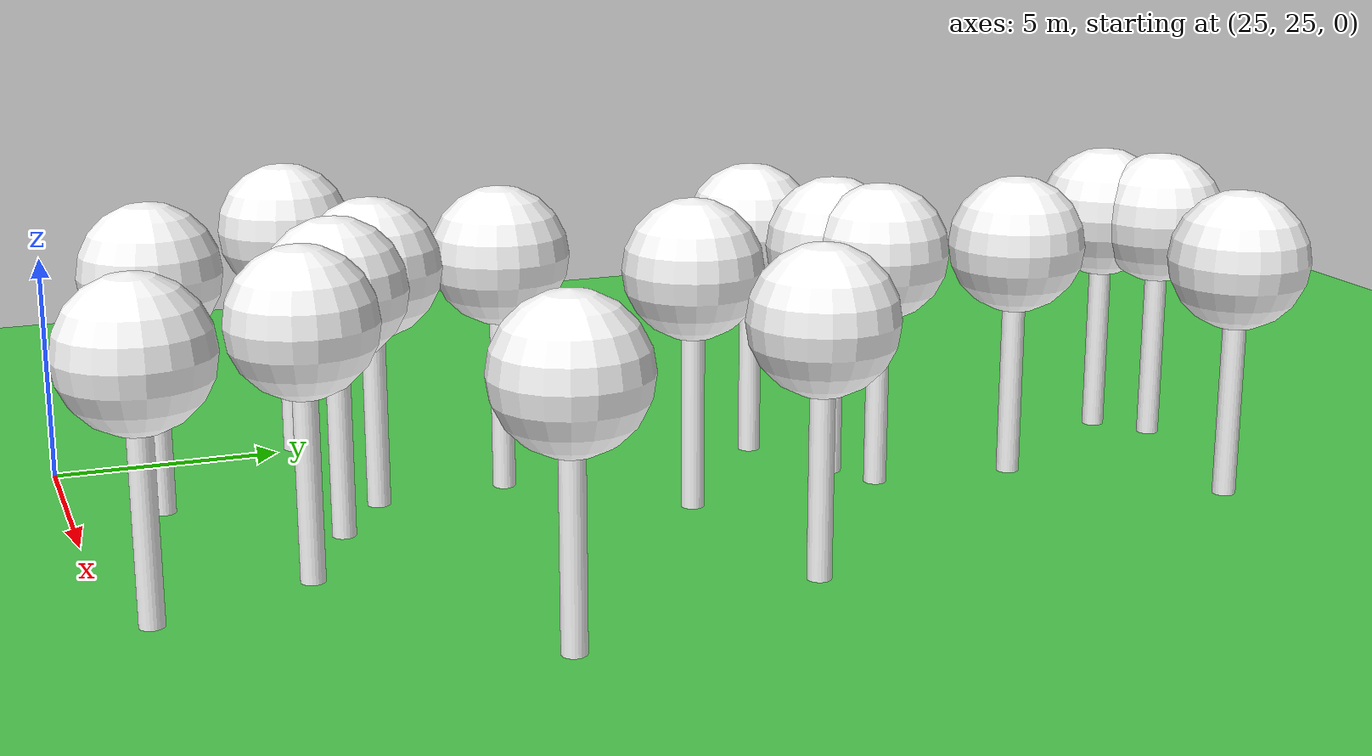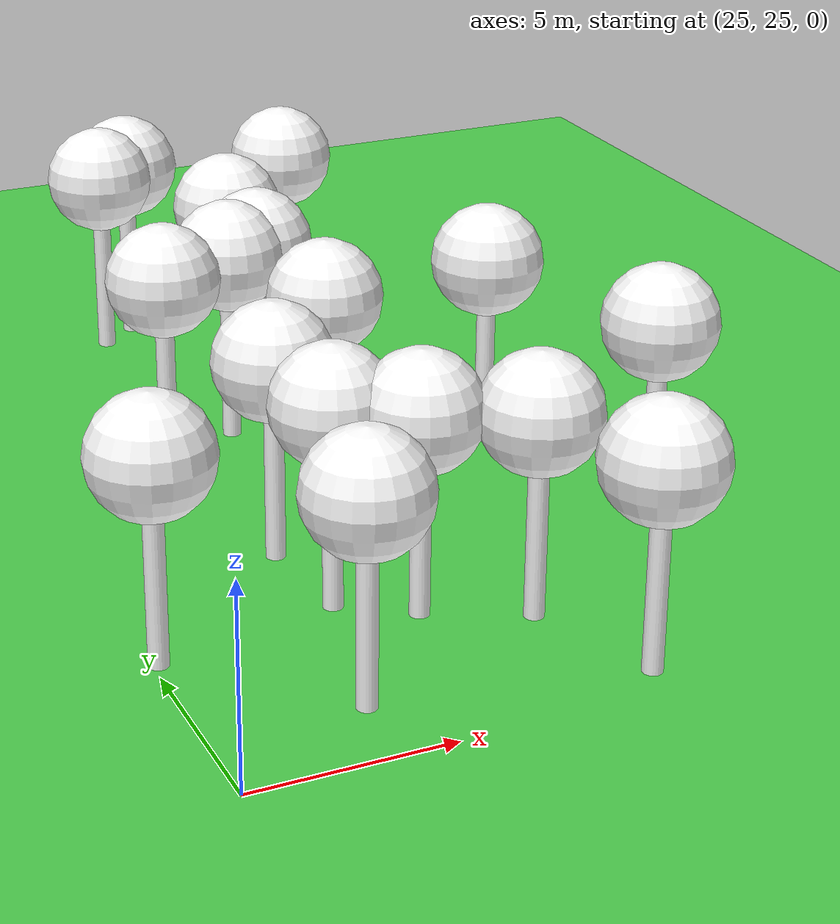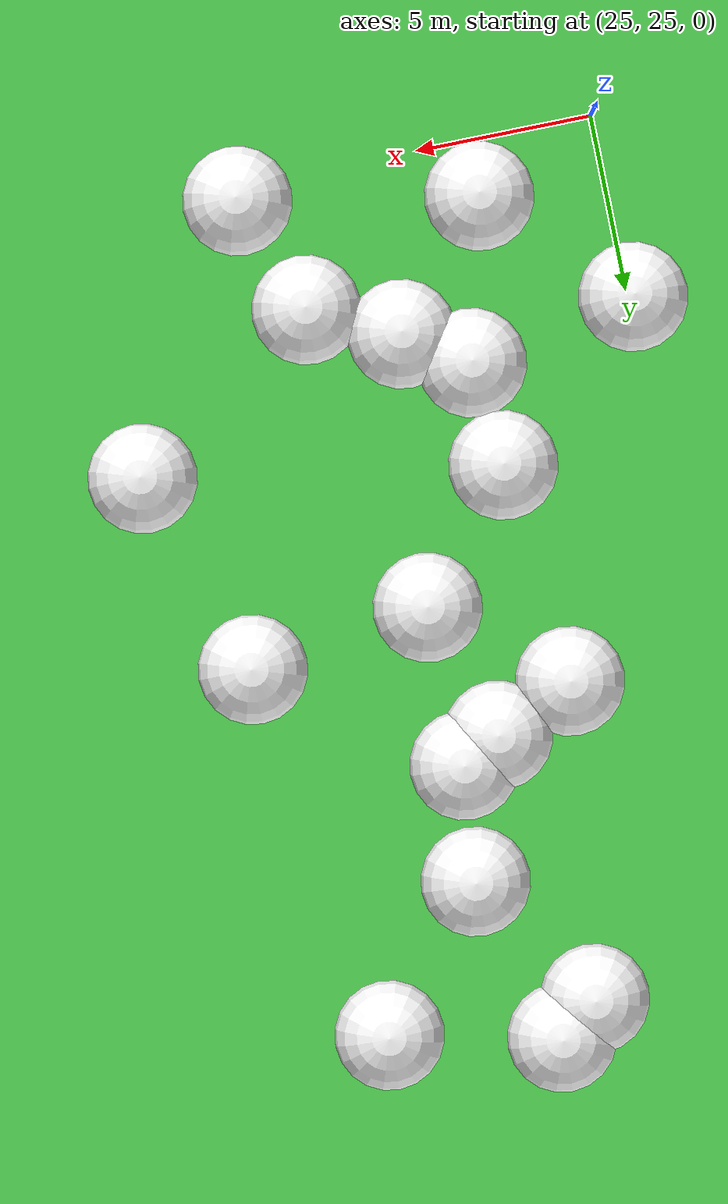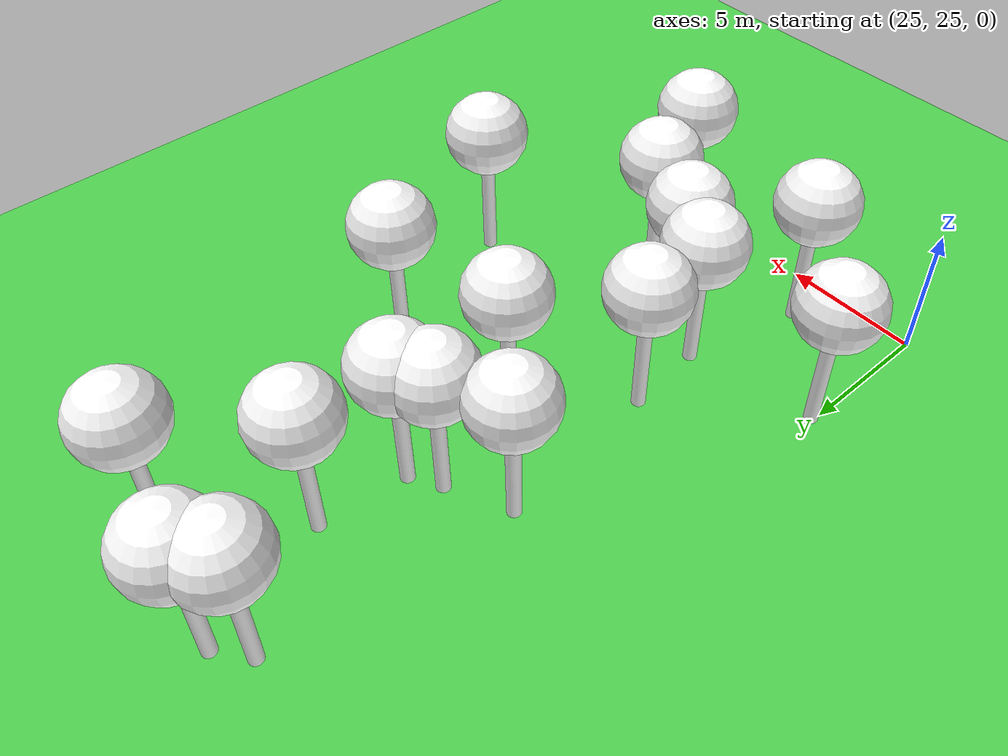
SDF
<sdf version="1.8">
 <world name="forest_world">
  <model name="tree_simple475">
   <static>1</static>
   <link name="link">
    <pose>0 0 0.1 0 -0 0</pose>
    <collision name="collision_trunk">
     <pose>0 0 2 0 -0 0</pose>
     <geometry><cylinder><radius>0.25</radius><length>4</length></cylinder></geometry>
    </collision>
    <collision name="collision_treetop">
     <pose>0 0 5.2 0 -0 0</pose>
     <geometry><sphere><radius>1.5</radius></sphere></geometry>
    </collision>
    <visual name="trunk_475">
     <pose>0 0 2 0 -0 0</pose>
     <geometry><cylinder><radius>0.25</radius><length>4</length></cylinder></geometry>
     <material>
      <ambient>0.5 0.5 0.5 1</ambient>
      <diffuse>1.0 1.0 1.0 1</diffuse>
      <specular>0.0 0.0 0.0 1</specular>
      <pbr>
       <metal>
        <albedo_map>file://textures/tree_simple_trunk.jpg</albedo_map>
        <metalness>0.0</metalness>
        <roughness>0.8</roughness>
       </metal>
      </pbr>
     </material>
    </visual>
    <visual name="treetop_475">
     <pose>0 0 5.2 0 -0 0</pose>
     <geometry><sphere><radius>1.5</radius></sphere></geometry>
     <material>
      <ambient>0.5 0.5 0.5 1</ambient>
      <diffuse>1.0 1.0 1.0 1</diffuse>
      <specular>0.0 0.0 0.0 1</specular>
      <pbr>
       <metal>
        <albedo_map>file://textures/tree_simple_treetop.jpg</albedo_map>
        <metalness>0.0</metalness>
        <roughness>0.9</roughness>
       </metal>
      </pbr>
     </material>
    </visual>
   </link>
   <pose>30.9431222124 49.7431013716 0 0 -0 0</pose>
  </model>
  <model name="tree_simple449">
   <static>1</static>
   <link name="link">
    <pose>0 0 0.1 0 -0 0</pose>
    <collision name="collision_trunk">
     <pose>0 0 2 0 -0 0</pose>
     <geometry><cylinder><radius>0.25</radius><length>4</length></cylinder></geometry>
    </collision>
    <collision name="collision_treetop">
     <pose>0 0 5.2 0 -0 0</pose>
     <geometry><sphere><radius>1.5</radius></sphere></geometry>
    </collision>
    <visual name="trunk_449">
     <pose>0 0 2 0 -0 0</pose>
     <geometry><cylinder><radius>0.25</radius><length>4</length></cylinder></geometry>
     <material>
      <ambient>0.5 0.5 0.5 1</ambient>
      <diffuse>1.0 1.0 1.0 1</diffuse>
      <specular>0.0 0.0 0.0 1</specular>
      <pbr>
       <metal>
        <albedo_map>file://textures/tree_simple_trunk.jpg</albedo_map>
        <metalness>0.0</metalness>
        <roughness>0.8</roughness>
       </metal>
      </pbr>
     </material>
    </visual>
    <visual name="treetop_449">
     <pose>0 0 5.2 0 -0 0</pose>
     <geometry><sphere><radius>1.5</radius></sphere></geometry>
     <material>
      <ambient>0.5 0.5 0.5 1</ambient>
      <diffuse>1.0 1.0 1.0 1</diffuse>
      <specular>0.0 0.0 0.0 1</specular>
      <pbr>
       <metal>
        <albedo_map>file://textures/tree_simple_treetop.jpg</albedo_map>
        <metalness>0.0</metalness>
        <roughness>0.9</roughness>
       </metal>
      </pbr>
     </material>
    </visual>
   </link>
   <pose>32.2301413543 37.584175072 0 0 -0 0</pose>
  </model>
  <model name="tree_simple366">
   <static>1</static>
   <link name="link">
    <pose>0 0 0.1 0 -0 0</pose>
    <collision name="collision_trunk">
     <pose>0 0 2 0 -0 0</pose>
     <geometry><cylinder><radius>0.25</radius><length>4</length></cylinder></geometry>
    </collision>
    <collision name="collision_treetop">
     <pose>0 0 5.2 0 -0 0</pose>
     <geometry><sphere><radius>1.5</radius></sphere></geometry>
    </collision>
    <visual name="trunk_366">
     <pose>0 0 2 0 -0 0</pose>
     <geometry><cylinder><radius>0.25</radius><length>4</length></cylinder></geometry>
     <material>
      <ambient>0.5 0.5 0.5 1</ambient>
      <diffuse>1.0 1.0 1.0 1</diffuse>
      <specular>0.0 0.0 0.0 1</specular>
      <pbr>
       <metal>
        <albedo_map>file://textures/tree_simple_trunk.jpg</albedo_map>
        <metalness>0.0</metalness>
        <roughness>0.8</roughness>
       </metal>
      </pbr>
     </material>
    </visual>
    <visual name="treetop_366">
     <pose>0 0 5.2 0 -0 0</pose>
     <geometry><sphere><radius>1.5</radius></sphere></geometry>
     <material>
      <ambient>0.5 0.5 0.5 1</ambient>
      <diffuse>1.0 1.0 1.0 1</diffuse>
      <specular>0.0 0.0 0.0 1</specular>
      <pbr>
       <metal>
        <albedo_map>file://textures/tree_simple_treetop.jpg</albedo_map>
        <metalness>0.0</metalness>
        <roughness>0.9</roughness>
       </metal>
      </pbr>
     </material>
    </visual>
   </link>
   <pose>37.2116014065 38.3075288524 0 0 -0 0</pose>
  </model>
  <model name="tree_simple345">
   <static>1</static>
   <link name="link">
    <pose>0 0 0.1 0 -0 0</pose>
    <collision name="collision_trunk">
     <pose>0 0 2 0 -0 0</pose>
     <geometry><cylinder><radius>0.25</radius><length>4</length></cylinder></geometry>
    </collision>
    <collision name="collision_treetop">
     <pose>0 0 5.2 0 -0 0</pose>
     <geometry><sphere><radius>1.5</radius></sphere></geometry>
    </collision>
    <visual name="trunk_345">
     <pose>0 0 2 0 -0 0</pose>
     <geometry><cylinder><radius>0.25</radius><length>4</length></cylinder></geometry>
     <material>
      <ambient>0.5 0.5 0.5 1</ambient>
      <diffuse>1.0 1.0 1.0 1</diffuse>
      <specular>0.0 0.0 0.0 1</specular>
      <pbr>
       <metal>
        <albedo_map>file://textures/tree_simple_trunk.jpg</albedo_map>
        <metalness>0.0</metalness>
        <roughness>0.8</roughness>
       </metal>
      </pbr>
     </material>
    </visual>
    <visual name="treetop_345">
     <pose>0 0 5.2 0 -0 0</pose>
     <geometry><sphere><radius>1.5</radius></sphere></geometry>
     <material>
      <ambient>0.5 0.5 0.5 1</ambient>
      <diffuse>1.0 1.0 1.0 1</diffuse>
      <specular>0.0 0.0 0.0 1</specular>
      <pbr>
       <metal>
        <albedo_map>file://textures/tree_simple_treetop.jpg</albedo_map>
        <metalness>0.0</metalness>
        <roughness>0.9</roughness>
       </metal>
      </pbr>
     </material>
    </visual>
   </link>
   <pose>28.6628994432 26.9095330542 0 0 -0 0</pose>
  </model>
  <model name="tree_simple332">
   <static>1</static>
   <link name="link">
    <pose>0 0 0.1 0 -0 0</pose>
    <collision name="collision_trunk">
     <pose>0 0 2 0 -0 0</pose>
     <geometry><cylinder><radius>0.25</radius><length>4</length></cylinder></geometry>
    </collision>
    <collision name="collision_treetop">
     <pose>0 0 5.2 0 -0 0</pose>
     <geometry><sphere><radius>1.5</radius></sphere></geometry>
    </collision>
    <visual name="trunk_332">
     <pose>0 0 2 0 -0 0</pose>
     <geometry><cylinder><radius>0.25</radius><length>4</length></cylinder></geometry>
     <material>
      <ambient>0.5 0.5 0.5 1</ambient>
      <diffuse>1.0 1.0 1.0 1</diffuse>
      <specular>0.0 0.0 0.0 1</specular>
      <pbr>
       <metal>
        <albedo_map>file://textures/tree_simple_trunk.jpg</albedo_map>
        <metalness>0.0</metalness>
        <roughness>0.8</roughness>
       </metal>
      </pbr>
     </material>
    </visual>
    <visual name="treetop_332">
     <pose>0 0 5.2 0 -0 0</pose>
     <geometry><sphere><radius>1.5</radius></sphere></geometry>
     <material>
      <ambient>0.5 0.5 0.5 1</ambient>
      <diffuse>1.0 1.0 1.0 1</diffuse>
      <specular>0.0 0.0 0.0 1</specular>
      <pbr>
       <metal>
        <albedo_map>file://textures/tree_simple_treetop.jpg</albedo_map>
        <metalness>0.0</metalness>
        <roughness>0.9</roughness>
       </metal>
      </pbr>
     </material>
    </visual>
   </link>
   <pose>39.1289157524 32.636662066 0 0 -0 0</pose>
  </model>
  <model name="tree_simple313">
   <static>1</static>
   <link name="link">
    <pose>0 0 0.1 0 -0 0</pose>
    <collision name="collision_trunk">
     <pose>0 0 2 0 -0 0</pose>
     <geometry><cylinder><radius>0.25</radius><length>4</length></cylinder></geometry>
    </collision>
    <collision name="collision_treetop">
     <pose>0 0 5.2 0 -0 0</pose>
     <geometry><sphere><radius>1.5</radius></sphere></geometry>
    </collision>
    <visual name="trunk_313">
     <pose>0 0 2 0 -0 0</pose>
     <geometry><cylinder><radius>0.25</radius><length>4</length></cylinder></geometry>
     <material>
      <ambient>0.5 0.5 0.5 1</ambient>
      <diffuse>1.0 1.0 1.0 1</diffuse>
      <specular>0.0 0.0 0.0 1</specular>
      <pbr>
       <metal>
        <albedo_map>file://textures/tree_simple_trunk.jpg</albedo_map>
        <metalness>0.0</metalness>
        <roughness>0.8</roughness>
       </metal>
      </pbr>
     </material>
    </visual>
    <visual name="treetop_313">
     <pose>0 0 5.2 0 -0 0</pose>
     <geometry><sphere><radius>1.5</radius></sphere></geometry>
     <material>
      <ambient>0.5 0.5 0.5 1</ambient>
      <diffuse>1.0 1.0 1.0 1</diffuse>
      <specular>0.0 0.0 0.0 1</specular>
      <pbr>
       <metal>
        <albedo_map>file://textures/tree_simple_treetop.jpg</albedo_map>
        <metalness>0.0</metalness>
        <roughness>0.9</roughness>
       </metal>
      </pbr>
     </material>
    </visual>
   </link>
   <pose>25.1046881591 30.4098930382 0 0 -0 0</pose>
  </model>
  <model name="tree_simple294">
   <static>1</static>
   <link name="link">
    <pose>0 0 0.1 0 -0 0</pose>
    <collision name="collision_trunk">
     <pose>0 0 2 0 -0 0</pose>
     <geometry><cylinder><radius>0.25</radius><length>4</length></cylinder></geometry>
    </collision>
    <collision name="collision_treetop">
     <pose>0 0 5.2 0 -0 0</pose>
     <geometry><sphere><radius>1.5</radius></sphere></geometry>
    </collision>
    <visual name="trunk_294">
     <pose>0 0 2 0 -0 0</pose>
     <geometry><cylinder><radius>0.25</radius><length>4</length></cylinder></geometry>
     <material>
      <ambient>0.5 0.5 0.5 1</ambient>
      <diffuse>1.0 1.0 1.0 1</diffuse>
      <specular>0.0 0.0 0.0 1</specular>
      <pbr>
       <metal>
        <albedo_map>file://textures/tree_simple_trunk.jpg</albedo_map>
        <metalness>0.0</metalness>
        <roughness>0.8</roughness>
       </metal>
      </pbr>
     </material>
    </visual>
    <visual name="treetop_294">
     <pose>0 0 5.2 0 -0 0</pose>
     <geometry><sphere><radius>1.5</radius></sphere></geometry>
     <material>
      <ambient>0.5 0.5 0.5 1</ambient>
      <diffuse>1.0 1.0 1.0 1</diffuse>
      <specular>0.0 0.0 0.0 1</specular>
      <pbr>
       <metal>
        <albedo_map>file://textures/tree_simple_treetop.jpg</albedo_map>
        <metalness>0.0</metalness>
        <roughness>0.9</roughness>
       </metal>
      </pbr>
     </material>
    </visual>
   </link>
   <pose>29.4568486027 34.1994676111 0 0 -0 0</pose>
  </model>
  <model name="tree_simple190">
   <static>1</static>
   <link name="link">
    <pose>0 0 0.1 0 -0 0</pose>
    <collision name="collision_trunk">
     <pose>0 0 2 0 -0 0</pose>
     <geometry><cylinder><radius>0.25</radius><length>4</length></cylinder></geometry>
    </collision>
    <collision name="collision_treetop">
     <pose>0 0 5.2 0 -0 0</pose>
     <geometry><sphere><radius>1.5</radius></sphere></geometry>
    </collision>
    <visual name="trunk_190">
     <pose>0 0 2 0 -0 0</pose>
     <geometry><cylinder><radius>0.25</radius><length>4</length></cylinder></geometry>
     <material>
      <ambient>0.5 0.5 0.5 1</ambient>
      <diffuse>1.0 1.0 1.0 1</diffuse>
      <specular>0.0 0.0 0.0 1</specular>
      <pbr>
       <metal>
        <albedo_map>file://textures/tree_simple_trunk.jpg</albedo_map>
        <metalness>0.0</metalness>
        <roughness>0.8</roughness>
       </metal>
      </pbr>
     </material>
    </visual>
    <visual name="treetop_190">
     <pose>0 0 5.2 0 -0 0</pose>
     <geometry><sphere><radius>1.5</radius></sphere></geometry>
     <material>
      <ambient>0.5 0.5 0.5 1</ambient>
      <diffuse>1.0 1.0 1.0 1</diffuse>
      <specular>0.0 0.0 0.0 1</specular>
      <pbr>
       <metal>
        <albedo_map>file://textures/tree_simple_treetop.jpg</albedo_map>
        <metalness>0.0</metalness>
        <roughness>0.9</roughness>
       </metal>
      </pbr>
     </material>
    </visual>
   </link>
   <pose>33.8682165362 29.0192768916 0 0 -0 0</pose>
  </model>
  <model name="tree_simple180">
   <static>1</static>
   <link name="link">
    <pose>0 0 0.1 0 -0 0</pose>
    <collision name="collision_trunk">
     <pose>0 0 2 0 -0 0</pose>
     <geometry><cylinder><radius>0.25</radius><length>4</length></cylinder></geometry>
    </collision>
    <collision name="collision_treetop">
     <pose>0 0 5.2 0 -0 0</pose>
     <geometry><sphere><radius>1.5</radius></sphere></geometry>
    </collision>
    <visual name="trunk_180">
     <pose>0 0 2 0 -0 0</pose>
     <geometry><cylinder><radius>0.25</radius><length>4</length></cylinder></geometry>
     <material>
      <ambient>0.5 0.5 0.5 1</ambient>
      <diffuse>1.0 1.0 1.0 1</diffuse>
      <specular>0.0 0.0 0.0 1</specular>
      <pbr>
       <metal>
        <albedo_map>file://textures/tree_simple_trunk.jpg</albedo_map>
        <metalness>0.0</metalness>
        <roughness>0.8</roughness>
       </metal>
      </pbr>
     </material>
    </visual>
    <visual name="treetop_180">
     <pose>0 0 5.2 0 -0 0</pose>
     <geometry><sphere><radius>1.5</radius></sphere></geometry>
     <material>
      <ambient>0.5 0.5 0.5 1</ambient>
      <diffuse>1.0 1.0 1.0 1</diffuse>
      <specular>0.0 0.0 0.0 1</specular>
      <pbr>
       <metal>
        <albedo_map>file://textures/tree_simple_treetop.jpg</albedo_map>
        <metalness>0.0</metalness>
        <roughness>0.9</roughness>
       </metal>
      </pbr>
     </material>
    </visual>
   </link>
   <pose>31.0354412198 41.3621247095 0 0 -0 0</pose>
  </model>
  <model name="tree_simple164">
   <static>1</static>
   <link name="link">
    <pose>0 0 0.1 0 -0 0</pose>
    <collision name="collision_trunk">
     <pose>0 0 2 0 -0 0</pose>
     <geometry><cylinder><radius>0.25</radius><length>4</length></cylinder></geometry>
    </collision>
    <collision name="collision_treetop">
     <pose>0 0 5.2 0 -0 0</pose>
     <geometry><sphere><radius>1.5</radius></sphere></geometry>
    </collision>
    <visual name="trunk_164">
     <pose>0 0 2 0 -0 0</pose>
     <geometry><cylinder><radius>0.25</radius><length>4</length></cylinder></geometry>
     <material>
      <ambient>0.5 0.5 0.5 1</ambient>
      <diffuse>1.0 1.0 1.0 1</diffuse>
      <specular>0.0 0.0 0.0 1</specular>
      <pbr>
       <metal>
        <albedo_map>file://textures/tree_simple_trunk.jpg</albedo_map>
        <metalness>0.0</metalness>
        <roughness>0.8</roughness>
       </metal>
      </pbr>
     </material>
    </visual>
    <visual name="treetop_164">
     <pose>0 0 5.2 0 -0 0</pose>
     <geometry><sphere><radius>1.5</radius></sphere></geometry>
     <material>
      <ambient>0.5 0.5 0.5 1</ambient>
      <diffuse>1.0 1.0 1.0 1</diffuse>
      <specular>0.0 0.0 0.0 1</specular>
      <pbr>
       <metal>
        <albedo_map>file://textures/tree_simple_treetop.jpg</albedo_map>
        <metalness>0.0</metalness>
        <roughness>0.9</roughness>
       </metal>
      </pbr>
     </material>
    </visual>
   </link>
   <pose>32.4161735763 45.136147052 0 0 -0 0</pose>
  </model>
  <model name="tree_simple159">
   <static>1</static>
   <link name="link">
    <pose>0 0 0.1 0 -0 0</pose>
    <collision name="collision_trunk">
     <pose>0 0 2 0 -0 0</pose>
     <geometry><cylinder><radius>0.25</radius><length>4</length></cylinder></geometry>
    </collision>
    <collision name="collision_treetop">
     <pose>0 0 5.2 0 -0 0</pose>
     <geometry><sphere><radius>1.5</radius></sphere></geometry>
    </collision>
    <visual name="trunk_159">
     <pose>0 0 2 0 -0 0</pose>
     <geometry><cylinder><radius>0.25</radius><length>4</length></cylinder></geometry>
     <material>
      <ambient>0.5 0.5 0.5 1</ambient>
      <diffuse>1.0 1.0 1.0 1</diffuse>
      <specular>0.0 0.0 0.0 1</specular>
      <pbr>
       <metal>
        <albedo_map>file://textures/tree_simple_trunk.jpg</albedo_map>
        <metalness>0.0</metalness>
        <roughness>0.8</roughness>
       </metal>
      </pbr>
     </material>
    </visual>
    <visual name="treetop_159">
     <pose>0 0 5.2 0 -0 0</pose>
     <geometry><sphere><radius>1.5</radius></sphere></geometry>
     <material>
      <ambient>0.5 0.5 0.5 1</ambient>
      <diffuse>1.0 1.0 1.0 1</diffuse>
      <specular>0.0 0.0 0.0 1</specular>
      <pbr>
       <metal>
        <albedo_map>file://textures/tree_simple_treetop.jpg</albedo_map>
        <metalness>0.0</metalness>
        <roughness>0.9</roughness>
       </metal>
      </pbr>
     </material>
    </visual>
   </link>
   <pose>28.8379877366 40.3060921844 0 0 -0 0</pose>
  </model>
  <model name="tree_simple144">
   <static>1</static>
   <link name="link">
    <pose>0 0 0.1 0 -0 0</pose>
    <collision name="collision_trunk">
     <pose>0 0 2 0 -0 0</pose>
     <geometry><cylinder><radius>0.25</radius><length>4</length></cylinder></geometry>
    </collision>
    <collision name="collision_treetop">
     <pose>0 0 5.2 0 -0 0</pose>
     <geometry><sphere><radius>1.5</radius></sphere></geometry>
    </collision>
    <visual name="trunk_144">
     <pose>0 0 2 0 -0 0</pose>
     <geometry><cylinder><radius>0.25</radius><length>4</length></cylinder></geometry>
     <material>
      <ambient>0.5 0.5 0.5 1</ambient>
      <diffuse>1.0 1.0 1.0 1</diffuse>
      <specular>0.0 0.0 0.0 1</specular>
      <pbr>
       <metal>
        <albedo_map>file://textures/tree_simple_trunk.jpg</albedo_map>
        <metalness>0.0</metalness>
        <roughness>0.8</roughness>
       </metal>
      </pbr>
     </material>
    </visual>
    <visual name="treetop_144">
     <pose>0 0 5.2 0 -0 0</pose>
     <geometry><sphere><radius>1.5</radius></sphere></geometry>
     <material>
      <ambient>0.5 0.5 0.5 1</ambient>
      <diffuse>1.0 1.0 1.0 1</diffuse>
      <specular>0.0 0.0 0.0 1</specular>
      <pbr>
       <metal>
        <albedo_map>file://textures/tree_simple_treetop.jpg</albedo_map>
        <metalness>0.0</metalness>
        <roughness>0.9</roughness>
       </metal>
      </pbr>
     </material>
    </visual>
   </link>
   <pose>29.8740769381 48.8863352602 0 0 -0 0</pose>
  </model>
  <model name="tree_simple97">
   <static>1</static>
   <link name="link">
    <pose>0 0 0.1 0 -0 0</pose>
    <collision name="collision_trunk">
     <pose>0 0 2 0 -0 0</pose>
     <geometry><cylinder><radius>0.25</radius><length>4</length></cylinder></geometry>
    </collision>
    <collision name="collision_treetop">
     <pose>0 0 5.2 0 -0 0</pose>
     <geometry><sphere><radius>1.5</radius></sphere></geometry>
    </collision>
    <visual name="trunk_97">
     <pose>0 0 2 0 -0 0</pose>
     <geometry><cylinder><radius>0.25</radius><length>4</length></cylinder></geometry>
     <material>
      <ambient>0.5 0.5 0.5 1</ambient>
      <diffuse>1.0 1.0 1.0 1</diffuse>
      <specular>0.0 0.0 0.0 1</specular>
      <pbr>
       <metal>
        <albedo_map>file://textures/tree_simple_trunk.jpg</albedo_map>
        <metalness>0.0</metalness>
        <roughness>0.8</roughness>
       </metal>
      </pbr>
     </material>
    </visual>
    <visual name="treetop_97">
     <pose>0 0 5.2 0 -0 0</pose>
     <geometry><sphere><radius>1.5</radius></sphere></geometry>
     <material>
      <ambient>0.5 0.5 0.5 1</ambient>
      <diffuse>1.0 1.0 1.0 1</diffuse>
      <specular>0.0 0.0 0.0 1</specular>
      <pbr>
       <metal>
        <albedo_map>file://textures/tree_simple_treetop.jpg</albedo_map>
        <metalness>0.0</metalness>
        <roughness>0.9</roughness>
       </metal>
      </pbr>
     </material>
    </visual>
   </link>
   <pose>31.4551659001 30.1710524081 0 0 -0 0</pose>
  </model>
  <model name="tree_simple78">
   <static>1</static>
   <link name="link">
    <pose>0 0 0.1 0 -0 0</pose>
    <collision name="collision_trunk">
     <pose>0 0 2 0 -0 0</pose>
     <geometry><cylinder><radius>0.25</radius><length>4</length></cylinder></geometry>
    </collision>
    <collision name="collision_treetop">
     <pose>0 0 5.2 0 -0 0</pose>
     <geometry><sphere><radius>1.5</radius></sphere></geometry>
    </collision>
    <visual name="trunk_78">
     <pose>0 0 2 0 -0 0</pose>
     <geometry><cylinder><radius>0.25</radius><length>4</length></cylinder></geometry>
     <material>
      <ambient>0.5 0.5 0.5 1</ambient>
      <diffuse>1.0 1.0 1.0 1</diffuse>
      <specular>0.0 0.0 0.0 1</specular>
      <pbr>
       <metal>
        <albedo_map>file://textures/tree_simple_trunk.jpg</albedo_map>
        <metalness>0.0</metalness>
        <roughness>0.8</roughness>
       </metal>
      </pbr>
     </material>
    </visual>
    <visual name="treetop_78">
     <pose>0 0 5.2 0 -0 0</pose>
     <geometry><sphere><radius>1.5</radius></sphere></geometry>
     <material>
      <ambient>0.5 0.5 0.5 1</ambient>
      <diffuse>1.0 1.0 1.0 1</diffuse>
      <specular>0.0 0.0 0.0 1</specular>
      <pbr>
       <metal>
        <albedo_map>file://textures/tree_simple_treetop.jpg</albedo_map>
        <metalness>0.0</metalness>
        <roughness>0.9</roughness>
       </metal>
      </pbr>
     </material>
    </visual>
   </link>
   <pose>35.525854971 48.7689145504 0 0 -0 0</pose>
  </model>
  <model name="tree_simple47">
   <static>1</static>
   <link name="link">
    <pose>0 0 0.1 0 -0 0</pose>
    <collision name="collision_trunk">
     <pose>0 0 2 0 -0 0</pose>
     <geometry><cylinder><radius>0.25</radius><length>4</length></cylinder></geometry>
    </collision>
    <collision name="collision_treetop">
     <pose>0 0 5.2 0 -0 0</pose>
     <geometry><sphere><radius>1.5</radius></sphere></geometry>
    </collision>
    <visual name="trunk_47">
     <pose>0 0 2 0 -0 0</pose>
     <geometry><cylinder><radius>0.25</radius><length>4</length></cylinder></geometry>
     <material>
      <ambient>0.5 0.5 0.5 1</ambient>
      <diffuse>1.0 1.0 1.0 1</diffuse>
      <specular>0.0 0.0 0.0 1</specular>
      <pbr>
       <metal>
        <albedo_map>file://textures/tree_simple_trunk.jpg</albedo_map>
        <metalness>0.0</metalness>
        <roughness>0.8</roughness>
       </metal>
      </pbr>
     </material>
    </visual>
    <visual name="treetop_47">
     <pose>0 0 5.2 0 -0 0</pose>
     <geometry><sphere><radius>1.5</radius></sphere></geometry>
     <material>
      <ambient>0.5 0.5 0.5 1</ambient>
      <diffuse>1.0 1.0 1.0 1</diffuse>
      <specular>0.0 0.0 0.0 1</specular>
      <pbr>
       <metal>
        <albedo_map>file://textures/tree_simple_treetop.jpg</albedo_map>
        <metalness>0.0</metalness>
        <roughness>0.9</roughness>
       </metal>
      </pbr>
     </material>
    </visual>
   </link>
   <pose>29.7448798929 31.3110169918 0 0 -0 0</pose>
  </model>
  <model name="tree_simple44">
   <static>1</static>
   <link name="link">
    <pose>0 0 0.1 0 -0 0</pose>
    <collision name="collision_trunk">
     <pose>0 0 2 0 -0 0</pose>
     <geometry><cylinder><radius>0.25</radius><length>4</length></cylinder></geometry>
    </collision>
    <collision name="collision_treetop">
     <pose>0 0 5.2 0 -0 0</pose>
     <geometry><sphere><radius>1.5</radius></sphere></geometry>
    </collision>
    <visual name="trunk_44">
     <pose>0 0 2 0 -0 0</pose>
     <geometry><cylinder><radius>0.25</radius><length>4</length></cylinder></geometry>
     <material>
      <ambient>0.5 0.5 0.5 1</ambient>
      <diffuse>1.0 1.0 1.0 1</diffuse>
      <specular>0.0 0.0 0.0 1</specular>
      <pbr>
       <metal>
        <albedo_map>file://textures/tree_simple_trunk.jpg</albedo_map>
        <metalness>0.0</metalness>
        <roughness>0.8</roughness>
       </metal>
      </pbr>
     </material>
    </visual>
    <visual name="treetop_44">
     <pose>0 0 5.2 0 -0 0</pose>
     <geometry><sphere><radius>1.5</radius></sphere></geometry>
     <material>
      <ambient>0.5 0.5 0.5 1</ambient>
      <diffuse>1.0 1.0 1.0 1</diffuse>
      <specular>0.0 0.0 0.0 1</specular>
      <pbr>
       <metal>
        <albedo_map>file://textures/tree_simple_treetop.jpg</albedo_map>
        <metalness>0.0</metalness>
        <roughness>0.9</roughness>
       </metal>
      </pbr>
     </material>
    </visual>
   </link>
   <pose>35.1253684335 25.7534131059 0 0 -0 0</pose>
  </model>
  <model name="tree_simple24">
   <static>1</static>
   <link name="link">
    <pose>0 0 0.1 0 -0 0</pose>
    <collision name="collision_trunk">
     <pose>0 0 2 0 -0 0</pose>
     <geometry><cylinder><radius>0.25</radius><length>4</length></cylinder></geometry>
    </collision>
    <collision name="collision_treetop">
     <pose>0 0 5.2 0 -0 0</pose>
     <geometry><sphere><radius>1.5</radius></sphere></geometry>
    </collision>
    <visual name="trunk_24">
     <pose>0 0 2 0 -0 0</pose>
     <geometry><cylinder><radius>0.25</radius><length>4</length></cylinder></geometry>
     <material>
      <ambient>0.5 0.5 0.5 1</ambient>
      <diffuse>1.0 1.0 1.0 1</diffuse>
      <specular>0.0 0.0 0.0 1</specular>
      <pbr>
       <metal>
        <albedo_map>file://textures/tree_simple_trunk.jpg</albedo_map>
        <metalness>0.0</metalness>
        <roughness>0.8</roughness>
       </metal>
      </pbr>
     </material>
    </visual>
    <visual name="treetop_24">
     <pose>0 0 5.2 0 -0 0</pose>
     <geometry><sphere><radius>1.5</radius></sphere></geometry>
     <material>
      <ambient>0.5 0.5 0.5 1</ambient>
      <diffuse>1.0 1.0 1.0 1</diffuse>
      <specular>0.0 0.0 0.0 1</specular>
      <pbr>
       <metal>
        <albedo_map>file://textures/tree_simple_treetop.jpg</albedo_map>
        <metalness>0.0</metalness>
        <roughness>0.9</roughness>
       </metal>
      </pbr>
     </material>
    </visual>
   </link>
   <pose>32.0910142743 41.9793908422 0 0 -0 0</pose>
  </model>
  <model name="ground_plane">
   <static>true</static>
   <link name="link">
    <collision name="collision">
     <geometry><plane><normal>0 0 1</normal><size>250 250</size></plane></geometry>
     <surface><friction><ode><mu>1</mu><mu2>1</mu2></ode></friction></surface>
    </collision>
    <visual name="grass">
     <cast_shadows>false</cast_shadows>
     <geometry><mesh><uri>file://textures/grass_plane.dae</uri><scale>1 1 1</scale></mesh></geometry>
     <material>
      <ambient>0.2 0.6 0.2 1</ambient>
      <diffuse>0.3 0.8 0.3 1</diffuse>
      <specular>0.1 0.1 0.1 1</specular>
      <pbr>
       <metal>
        <albedo_map>file://textures/grass_seamless.jpg</albedo_map>
        <metalness>0.0</metalness>
        <roughness>0.9</roughness>
       </metal>
      </pbr>
     </material>
    </visual>
   </link>
  </model>
 </world>
</sdf>
